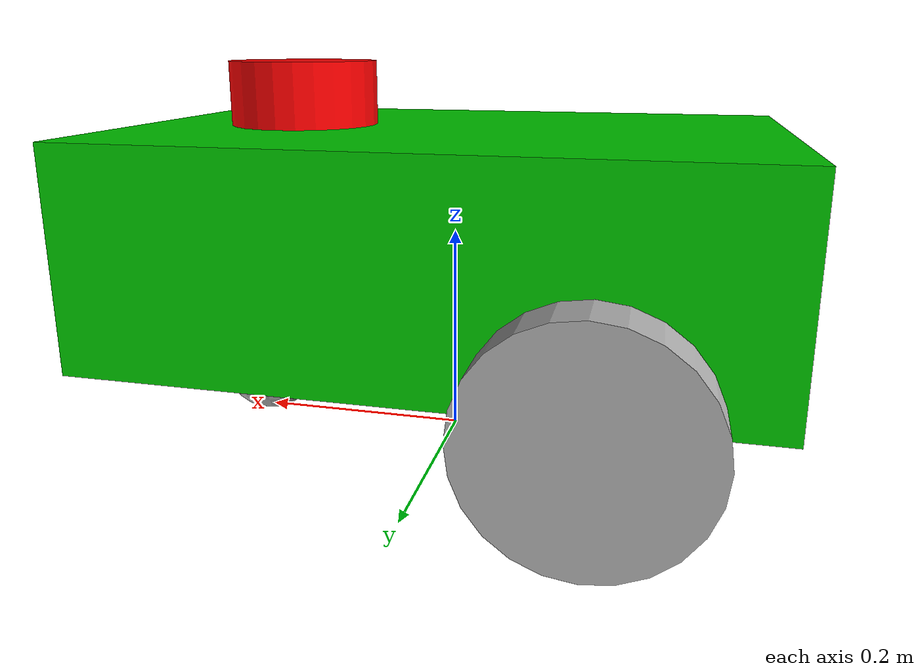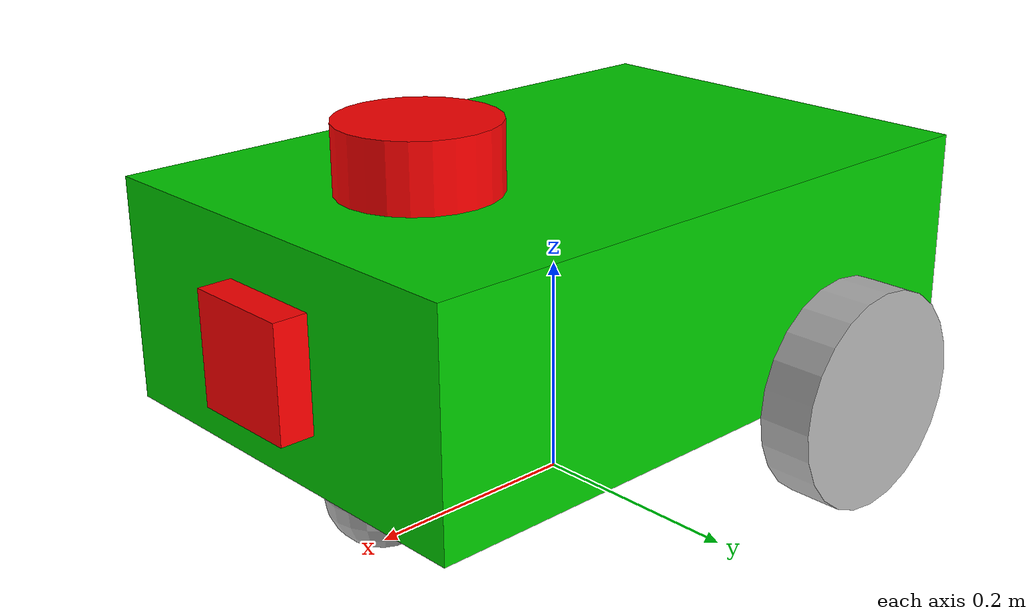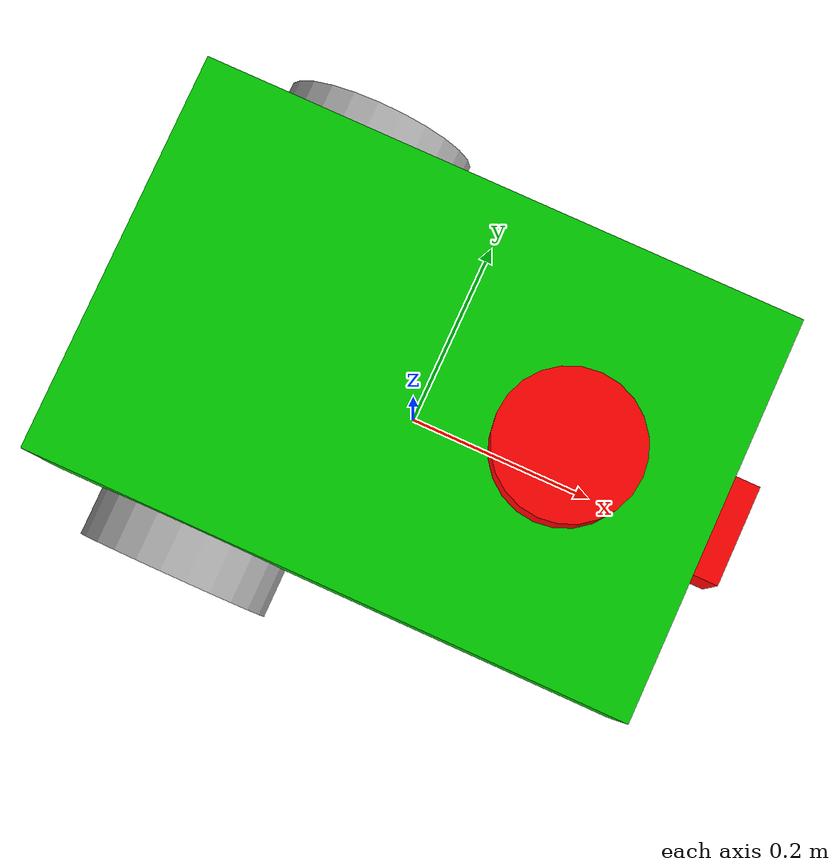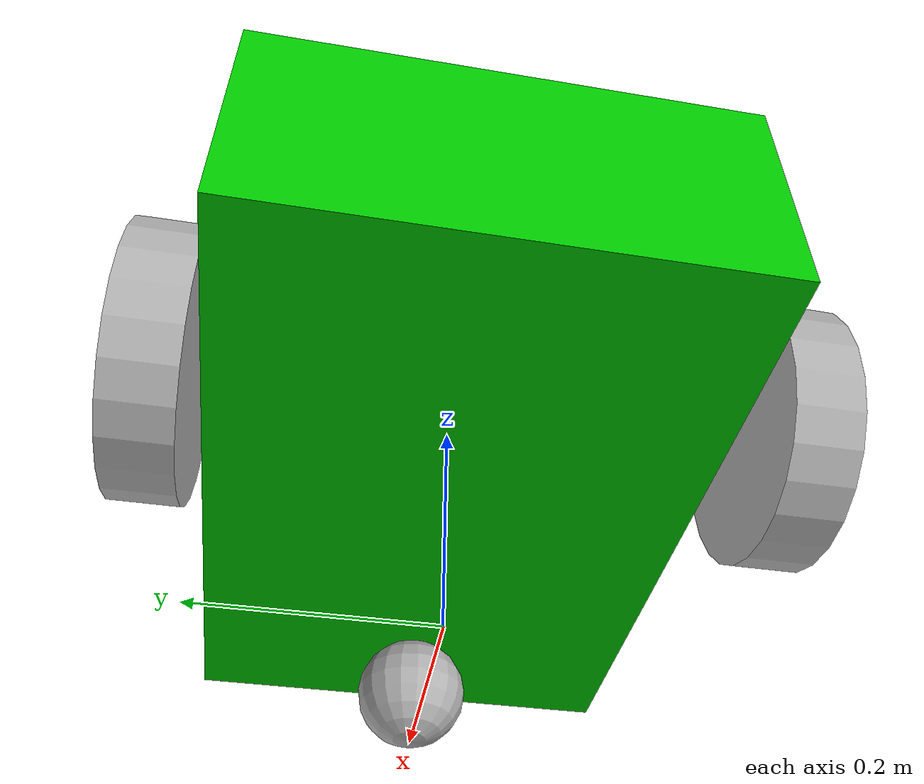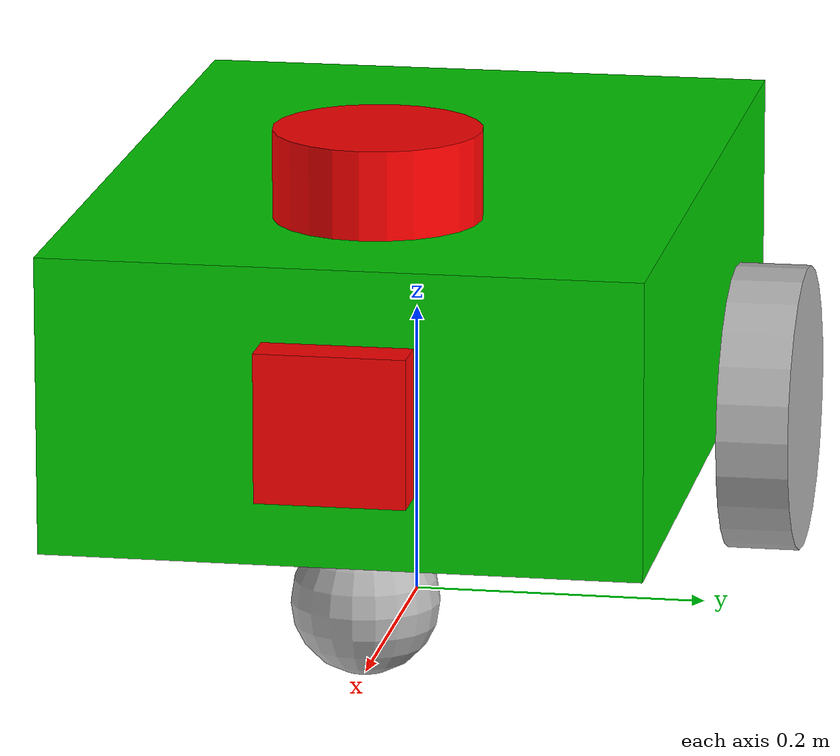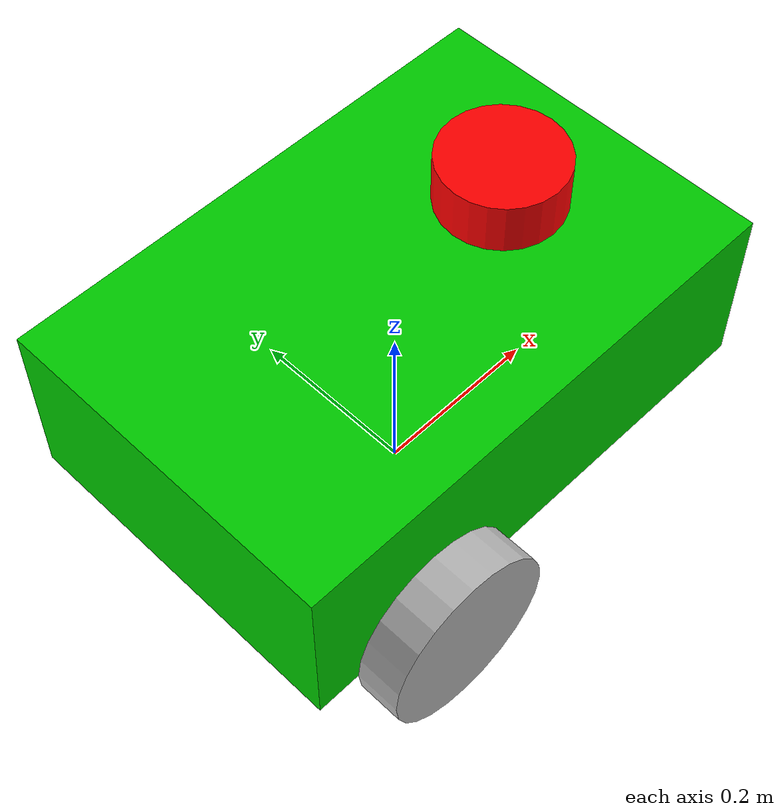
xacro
<?xml version="1.0"?>
<robot name = "my_robot" xmlns:xacro="http://www.ros.org/wiki/xacro">
    <xacro:include filename="$(find my_robot_description)/urdf/common_properties.xacro" />
    <xacro:include filename="$(find my_robot_description)/urdf/mobile_base.xacro" />
    <xacro:include filename="$(find my_robot_description)/urdf/mobile_base_gazebo.xacro" />

    <xacro:include filename="$(find my_robot_description)/urdf/lidar.xacro" />
    <xacro:include filename="$(find my_robot_description)/urdf/camera.xacro" />
</robot>

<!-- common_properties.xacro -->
<robot xmlns:xacro="http://www.ros.org/wiki/xacro">
    <material name="green">
        <color rgba="0 0.8 0 1" />
    </material>
    <material name="gray">
        <color rgba="0.7 0.7 0.7 1" />
    </material>
    <material name="red">
        <color rgba="1 0 0 1" />
    </material>

    <xacro:macro name="box_inertia" params="m x y z o_xyz o_rpy">
        <inertial>
            <mass value="${m}" />
            <origin xyz="${o_xyz}" rpy="${o_rpy}" />
            <inertia ixx="${(m/12) * (z*z + y*y)}" ixy="0" ixz="0"
                     iyy="${(m/12) * (x*x + z*z)}" iyz="0"
                     izz="${(m/12) * (x*x + y*y)}" />
        </inertial>
    </xacro:macro>

    <xacro:macro name="cylinder_inertia" params="m r l o_xyz o_rpy">
        <inertial>
            <mass value="${m}" />
            <origin xyz="${o_xyz}" rpy="${o_rpy}" />
            <inertia ixx="${(m/12) * (3*r*r + l*l)}" ixy="0" ixz="0"
                     iyy="${(m/12) * (3*r*r + l*l)}" iyz="0"
                     izz="${(m/2) * (r*r)}" />
        </inertial>
    </xacro:macro>

    <xacro:macro name="sphere_inertia" params="m r o_xyz o_rpy">
        <inertial>
            <mass value="${m}" />
            <origin xyz="${o_xyz}" rpy="${o_rpy}" />
            <inertia ixx="${(2/5) * m * r * r}" ixy="0" ixz="0"
                     iyy="${(2/5) * m * r * r}" iyz="0"
                     izz="${(2/5) * m * r * r}" />
        </inertial>
    </xacro:macro>
</robot>

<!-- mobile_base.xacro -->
<robot xmlns:xacro="http://www.ros.org/wiki/xacro">
    <xacro:property name="base_length" value="0.6" />
    <xacro:property name="base_width" value="0.4" />
    <xacro:property name="base_height" value="0.2" />
    <xacro:property name="wheel_radius" value="0.1" />
    <xacro:property name="wheel_length" value="0.05" />

    <xacro:macro name="wheel_link" params="prefix">
        <link name="${prefix}_wheel_link">
            <visual>
                <geometry>
                    <cylinder radius="${wheel_radius}" length="${wheel_length}" />
                </geometry>
                <origin xyz="0 0 0" rpy="${pi / 2.0} 0 0" />
                <material name="gray" />
            </visual>
            <xacro:cylinder_inertia m="1.0" r="${wheel_radius}" l="${wheel_length}"
                                    o_xyz="0 0 0" o_rpy="${pi/2.0} 0 0" />
            <collision>
                <geometry>
                    <sphere radius="${wheel_radius}" />
                </geometry>
                <origin xyz="0 0 0" rpy="0 0 0" />
            </collision>
        </link>
    </xacro:macro>

    <link name="base_link">
        <visual>
            <geometry>
                <box size="${base_length} ${base_width} ${base_height}" />
            </geometry>
            <origin xyz="0 0 ${base_height / 2.0}" rpy="0 0 0" />
            <material name="green" />
        </visual>
        <xacro:box_inertia m="5.0" x="${base_length}" y="${base_width}" z="${base_height}"
                           o_xyz="0 0 ${base_height/2.0}" o_rpy="0 0 0" />
        <collision>
            <geometry>
                <box size="${base_length} ${base_width} ${base_height}" />
            </geometry>
            <origin xyz="0 0 ${base_height / 2.0}" rpy="0 0 0" />
        </collision>
    </link>

    <xacro:wheel_link prefix="right" />
    <joint name="base_right_wheel_joint" type="continuous">
        <parent link="base_link" />
        <child link="right_wheel_link" />
        <origin xyz="${-base_length / 4.0} ${-(base_width + wheel_length) / 2.0} 0" rpy="0 0 0" />
        <axis xyz="0 1 0" />
    </joint>

    <xacro:wheel_link prefix="left" />
    <joint name="base_left_wheel_joint" type="continuous">
        <parent link="base_link" />
        <child link="left_wheel_link" />
        <origin xyz="${-base_length / 4.0} ${(base_width + wheel_length) / 2.0} 0" rpy="0 0 0" />
        <axis xyz="0 1 0" />
    </joint>

    <link name="caster_wheel_link">
        <visual>
            <geometry>
                <sphere radius="${wheel_radius / 2.0}" />
            </geometry>
            <origin xyz="0 0 0" rpy="0 0 0" />
            <material name="gray" />
        </visual>
        <xacro:sphere_inertia m="0.5" r="${wheel_radius/2.0}" o_xyz="0 0 0" o_rpy="0 0 0" />
        <collision>
            <geometry>
                <sphere radius="${wheel_radius / 2.0}" />
            </geometry>
            <origin xyz="0 0 0" rpy="0 0 0" />
        </collision>
    </link>
    <joint name="base_caster_wheel_joint" type="fixed">
        <parent link="base_link" />
        <child link="caster_wheel_link" />
        <origin xyz="${base_length / 3.0} 0 ${-wheel_radius / 2.0}" rpy="0 0 0" />
    </joint>

    <link name="base_footprint" />
    <joint name="base_joint" type="fixed">
        <parent link="base_footprint" />
        <child link="base_link" />
        <origin xyz="0 0 ${wheel_radius}" rpy="0 0 0" />
    </joint>
</robot>

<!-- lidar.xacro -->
<robot xmlns:xacro="http://www.ros.org/wiki/xacro">
    <xacro:property name="base_length" value="0.6" />
    <xacro:property name="base_height" value="0.2" />

    <!-- Visual/Physical LIDAR link - Body of the sensor-->
    <link name="laser_link">
        <visual>
            <geometry>
                <cylinder radius="0.07" length="0.06" />
            </geometry>
            <origin xyz="${base_length / 4.0} 0 ${base_height+0.03}" rpy="0 0 ${pi / 2.0}" />
            <material name="red" />
        </visual>

        <xacro:cylinder_inertia m="1.0" r="0.05" l="0.04"
                                    o_xyz="0 0 0" o_rpy="${pi/2.0} 0 0" />
        <collision>
            <geometry>
                <sphere radius="0.05" />
            </geometry>
            <origin xyz="0 0 0" rpy="0 0 0" />
        </collision>
    </link>

    <joint name="laser_joint" type="fixed">
        <parent link="base_link" />
        <child link="laser_link" />
        <origin xyz="0 0 0" rpy="0 0 0" />
    </joint>

    <!-- Sensor frame - The actual sensor (required for Ign) -->
    <link name="laser_frame"> <!-- Puts the sensor on laser_frame link-->
        <inertial>
            <mass value="0.001" />
            <inertia ixx="0.0001" ixy="0" ixz="0" iyy="0.0001" iyz="0" izz="0.0001" />
        </inertial>
    </link>

    <joint name="laser_frame_joint" type="fixed">
        <parent link="laser_link" />
        <child link="laser_frame" />
        <origin xyz="${base_length / 4.0} 0 ${base_height+0.03}" rpy="0 0 ${pi / 2.0}" />
    </joint>

    <!-- Gazebo LIDAR Sensor -->
    <gazebo reference="laser_frame">
        <sensor name="laser" type="gpu_ray">
            <pose>0 0 0 0 0 0</pose>
            <visualize>true</visualize>
            <update_rate>10</update_rate>
            <ignition_frame_id>laser_frame</ignition_frame_id>
            <ray>
                <scan>
                    <horizontal>
                        <samples>360</samples>
                        <min_angle>-3.14</min_angle>
                        <max_angle>3.14</max_angle>
                    </horizontal>
                </scan>
                <range>
                    <min>0.3</min>
                    <max>12.0</max>
                </range>
            </ray>
            <always_on>true</always_on>
        </sensor>
    </gazebo>

</robot>

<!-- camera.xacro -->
<robot xmlns:xacro="http://www.ros.org/wiki/xacro">
    <xacro:property name="base_length" value="0.6" />
    <xacro:property name="base_height" value="0.2" />
    <xacro:property name="base_height" value="0.2" />

    <!-- Visual/Physical CAMERA link - Body of the sensor-->
    <link name="camera_link">
        <visual>
            <geometry>
                <box size="0.1 0.1 0.03" rpy="0 0 0" />
            </geometry>
            <origin xyz="${base_length / 2.0 + 0.015} 0 ${base_height / 2.0}" rpy="0 ${pi / 2.0} 0" />
            <material name="red" />
        </visual>

        <xacro:box_inertia m="5.0" x="${base_length}" y="${base_width}" z="${base_height}"
                           o_xyz="0 0 ${base_height/2.0}" o_rpy="0 0 0" />
        <collision>
            <geometry>
                <sphere radius="0.05" />
            </geometry>
            <origin xyz="0 0 0" rpy="0 0 0" />
        </collision>
    </link>

    <joint name="camera_joint" type="fixed">
        <parent link="base_link" />
        <child link="camera_link" />
        <origin xyz="0 0 0" rpy="0 0 0" />
    </joint>

    <!-- Sensor frame - The actual sensor (required for Ign) -->
    <link name="camera_frame"> <!-- Puts the sensor on camera_frame link-->
        <inertial>
            <mass value="0.001" />
            <inertia ixx="0.0001" ixy="0" ixz="0" iyy="0.0001" iyz="0" izz="0.0001" />
        </inertial>
    </link>

    <joint name="camera_frame_joint" type="fixed">
        <parent link="camera_link" />
        <child link="camera_frame" />
        <origin xyz="${base_length / 2.0 + 0.06} 0 ${base_height / 2.0}" rpy="0 0 0" />
    </joint>

    <!-- Gazebo LIDAR Sensor -->
    <gazebo reference="camera_frame">
        <sensor name="camera" type="camera">
            <pose>0 0 0 0 0 0</pose>
            <visualize>true</visualize>
            <update_rate>10</update_rate>
            <ignition_frame_id>camera_frame</ignition_frame_id>
            <camera>
                <horizontal_fov>1.047</horizontal_fov>
                <image>
                    <width>640</width>
                    <height>480</height>
                    <format>R8G8B8</format>
                </image>
                <clip>
                    <near>0.05</near>
                    <far>8.0</far>
            </clip>
            </camera>
            <always_on>true</always_on>
        </sensor>
    </gazebo>

</robot>
